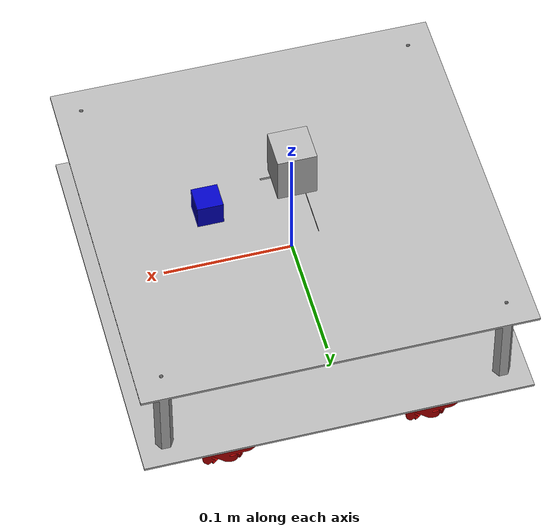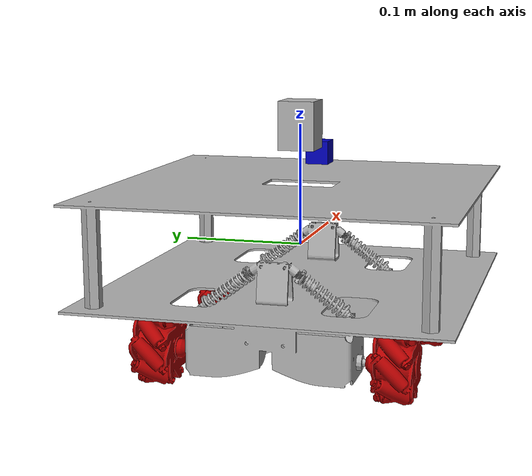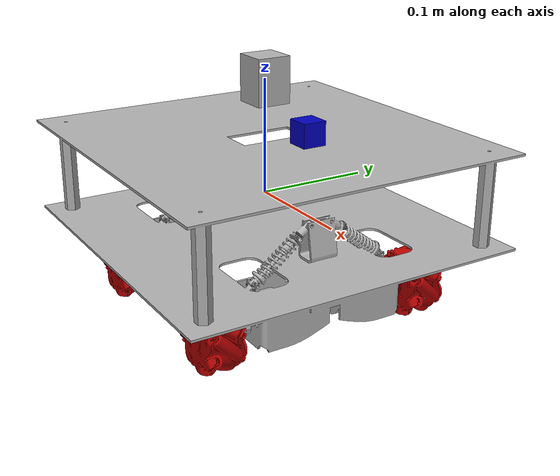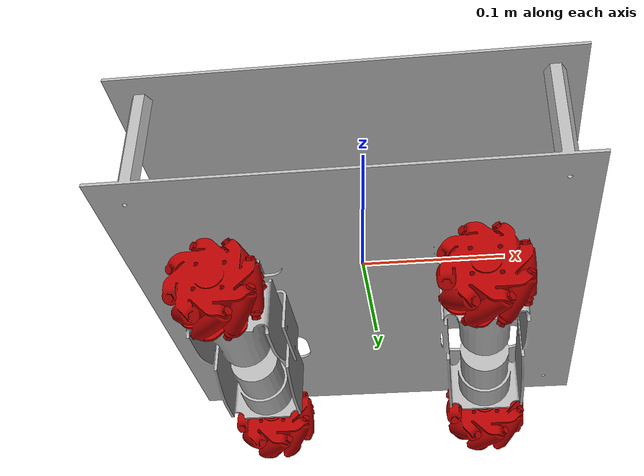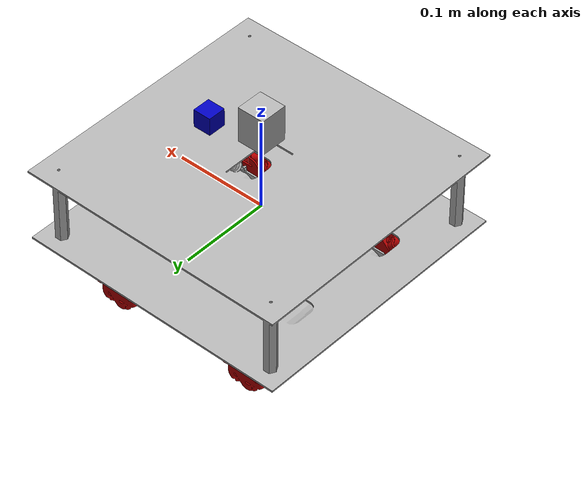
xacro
<?xml version="1.0" ?>
<robot name="test_urdf" xmlns:xacro="http://www.ros.org/wiki/xacro">

<xacro:include filename="$(find test_urdf_description)/urdf/materials.xacro" />
<xacro:include filename="$(find test_urdf_description)/urdf/test_urdf.trans" />
<xacro:include filename="$(find test_urdf_description)/urdf/test_urdf.gazebo" />

<xacro:property name="camera_size" value="0.02"/>
<xacro:property name="camera_origin_x" value="0.065"/>
<xacro:property name="camera_origin_y" value="0"/>
<xacro:property name="camera_origin_z" value="0.07"/>

<xacro:property name="laser_size_x" value="0.03"/>
<xacro:property name="laser_size_y" value="0.03"/>
<xacro:property name="laser_size_z" value="0.04"/>
<xacro:property name="laser_origin_x" value="0.000"/>
<xacro:property name="laser_origin_y" value="0"/>
<xacro:property name="laser_origin_z" value="0.1"/>

<link name="base_footprint">
</link>

<link name="base_link">
  <inertial>
    <origin xyz="0.002324266194787791 8.74787643784769e-08 -0.021221672503303222" rpy="0 0 0"/>
    <mass value="5.27012256089369"/>
    <inertia ixx="0.041911" iyy="0.052658" izz="0.070317" ixy="0.0" iyz="0.0" ixz="-0.0"/>
  </inertial>
  <visual>
    <origin xyz="0 0 0" rpy="0 0 0"/>
    <geometry>
      <mesh filename="package://test_urdf_description/meshes/base_link.stl" scale="0.001 0.001 0.001"/>
    </geometry>
    <material name="silver"/>
  </visual>
  <collision>
    <origin xyz="0 0 0" rpy="0 0 0"/>
    <geometry>
      <mesh filename="package://test_urdf_description/meshes/base_link.stl" scale="0.001 0.001 0.001"/>
    </geometry>
  </collision>
</link>

<link name="backward_left_wheel_v1_1">
  <inertial>
    <origin xyz="-1.1557248450533297e-05 0.011279563276149276 -2.765017378882073e-05" rpy="0 0 0"/>
    <mass value="0.40458091077455555"/>
    <inertia ixx="0.000102" iyy="0.00014" izz="0.000102" ixy="-0.0" iyz="-0.0" ixz="-0.0"/>
  </inertial>
  <visual>
    <origin xyz="0.077767 -0.0855 0.074294" rpy="0 0 0"/>
    <geometry>
      <mesh filename="package://test_urdf_description/meshes/backward_left_wheel_v1_1.stl" scale="0.001 0.001 0.001"/>
    </geometry>
    <material name="green"/>
  </visual>
  <collision>
    <origin xyz="0.077767 -0.0855 0.074294" rpy="0 0 0"/>
    <geometry>
      <mesh filename="package://test_urdf_description/meshes/backward_left_wheel_v1_1.stl" scale="0.001 0.001 0.001"/>
    </geometry>
  </collision>
</link>

<link name="backward_right_wheel_v1_1">
  <inertial>
    <origin xyz="1.135019835438178e-05 -0.011279383659375988 -2.765017378618395e-05" rpy="0 0 0"/>
    <mass value="0.40458091077455555"/>
    <inertia ixx="0.000102" iyy="0.00014" izz="0.000102" ixy="-0.0" iyz="0.0" ixz="0.0"/>
  </inertial>
  <visual>
    <origin xyz="0.077767 0.0855 0.074294" rpy="0 0 0"/>
    <geometry>
      <mesh filename="package://test_urdf_description/meshes/backward_right_wheel_v1_1.stl" scale="0.001 0.001 0.001"/>
    </geometry>
    <material name="green"/>
  </visual>
  <collision>
    <origin xyz="0.077767 0.0855 0.074294" rpy="0 0 0"/>
    <geometry>
      <mesh filename="package://test_urdf_description/meshes/backward_right_wheel_v1_1.stl" scale="0.001 0.001 0.001"/>
    </geometry>
  </collision>
</link>

<link name="forward_left_wheel_v1_1">
  <inertial>
    <origin xyz="-1.155724844129069e-05 0.011279563276145904 -2.765017378712764e-05" rpy="0 0 0"/>
    <mass value="0.40458091077455555"/>
    <inertia ixx="0.000102" iyy="0.00014" izz="0.000102" ixy="-0.0" iyz="-0.0" ixz="-0.0"/>
  </inertial>
  <visual>
    <origin xyz="-0.082233 -0.0855 0.074294" rpy="0 0 0"/>
    <geometry>
      <mesh filename="package://test_urdf_description/meshes/forward_left_wheel_v1_1.stl" scale="0.001 0.001 0.001"/>
    </geometry>
    <material name="green"/>
  </visual>
  <collision>
    <origin xyz="-0.082233 -0.0855 0.074294" rpy="0 0 0"/>
    <geometry>
      <mesh filename="package://test_urdf_description/meshes/forward_left_wheel_v1_1.stl" scale="0.001 0.001 0.001"/>
    </geometry>
  </collision>
</link>

<link name="forward_right_wheel_v1_1">
  <inertial>
    <origin xyz="1.1350198356616104e-05 -0.01127938365937553 -2.7650173787835408e-05" rpy="0 0 0"/>
    <mass value="0.40458091077455555"/>
    <inertia ixx="0.000102" iyy="0.00014" izz="0.000102" ixy="-0.0" iyz="0.0" ixz="0.0"/>
  </inertial>
  <visual>
    <origin xyz="-0.082233 0.0855 0.074294" rpy="0 0 0"/>
    <geometry>
      <mesh filename="package://test_urdf_description/meshes/forward_right_wheel_v1_1.stl" scale="0.001 0.001 0.001"/>
    </geometry>
    <material name="green"/>
  </visual>
  <collision>
    <origin xyz="-0.082233 0.0855 0.074294" rpy="0 0 0"/>
    <geometry>
      <mesh filename="package://test_urdf_description/meshes/forward_right_wheel_v1_1.stl" scale="0.001 0.001 0.001"/>
    </geometry>
  </collision>
</link>

 <!--Camera-->
 <link name="camera">
  <visual>
    <geometry>
      <box size="${camera_size} ${camera_size} ${camera_size}"/>
    </geometry>
    <material name="blue"/>
  </visual>
  <collision>
    <geometry>
      <box size="${camera_size} ${camera_size} ${camera_size}"/>
    </geometry>
  </collision>
  <mass value="0.2"/>
</link>

<!--Laser Scan-->
<link name="sensor_laser">
  <visual>
    <geometry>

      <box size="${laser_size_x} ${laser_size_y} ${laser_size_z}"/>
    </geometry>
    <material name="silver"/>
  </visual>
  <collision>
    <geometry>
      <box size="${laser_size_x} ${laser_size_y} ${laser_size_z}"/>
    </geometry>
  </collision>
  <mass value="0.02"/>
</link>

<joint name="base_footprint_joint" type="fixed">
  <parent link="base_footprint"/>
  <child link="base_link"/>
</joint>

<joint name="Revolute_1" type="continuous">
  <origin xyz="-0.077767 0.0855 -0.074294" rpy="0 0 0"/>
  <parent link="base_link"/>
  <child link="backward_left_wheel_v1_1"/>
  <axis xyz="-0.0 1.0 0.0"/>
</joint>

<joint name="Revolute_2" type="continuous">
  <origin xyz="-0.077767 -0.0855 -0.074294" rpy="0 0 0"/>
  <parent link="base_link"/>
  <child link="backward_right_wheel_v1_1"/>
  <axis xyz="0.0 -1.0 0.0"/>
</joint>

<joint name="Revolute_3" type="continuous">
  <origin xyz="0.082233 0.0855 -0.074294" rpy="0 0 0"/>
  <parent link="base_link"/>
  <child link="forward_left_wheel_v1_1"/>
  <axis xyz="0.0 1.0 0.0"/>
</joint>

<joint name="Revolute_4" type="continuous">
  <origin xyz="0.082233 -0.0855 -0.074294" rpy="0 0 0"/>
  <parent link="base_link"/>
  <child link="forward_right_wheel_v1_1"/>
  <axis xyz="-0.0 -1.0 0.0"/>
</joint>

<joint name="camera_joint" type="fixed">
  <origin xyz="${camera_origin_x} ${camera_origin_y} ${camera_origin_z}" rpy="0 0 0"/>
  <parent link="base_link"/>
  <child link="camera"/>
</joint>

  <joint name="sensor_laser_joint" type="fixed">
    <origin xyz="${laser_origin_x} ${laser_origin_y} ${laser_origin_z}" rpy="0 0 0" />
    <parent link="base_link"/>
    <child link="sensor_laser" />
  </joint>

</robot>

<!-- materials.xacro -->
<robot name="test_urdf" xmlns:xacro="http://www.ros.org/wiki/xacro" >

<material name="silver">
  <color rgba="0.700 0.700 0.700 1.000"/>
</material>

<material name="blue">
  <color rgba="0.000 0.000 0.750 1.000"/>
</material>

<material name="green">
  <color rgba="0.700 0.000 0.000 1.000"/>
</material>

<material name="red">
  <color rgba="1.000 0.000 0.000 1.000"/>
</material>

</robot>

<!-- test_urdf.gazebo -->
<robot name="test_urdf" xmlns:xacro="http://www.ros.org/wiki/xacro" >

<xacro:property name="body_color" value="Gazebo/Silver" />

<gazebo>
  <plugin name="control" filename="libgazebo_ros_control.so"/>
</gazebo>

<gazebo>
  <plugin name="omni_steering" filename="libgazebo_ros_planar_move.so">
    <commandTopic>cmd_vel</commandTopic>
    <odometryTopic>odom</odometryTopic>
    <odometryFrame>odom</odometryFrame>
    <odometryRate>20.0</odometryRate>
    <robotBaseFrame>base_footprint</robotBaseFrame>
    <publishTF>true</publishTF>
  </plugin>
</gazebo>

<gazebo>
  <plugin name="imu_plugin" filename="libgazebo_ros_imu.so">
    <alwaysOn>true</alwaysOn>
    <bodyName>base_footprint</bodyName>
    <topicName>imu</topicName>
    <serviceName>imu_service</serviceName>
    <gaussianNoise>0.0</gaussianNoise>
    <updateRate>20.0</updateRate>
  </plugin>
</gazebo>

<gazebo reference="camera">
  <sensor type="camera" name="camera">
    <update_rate>30.0</update_rate>
    <camera name="head">
      <horizontal_fov>1.3962634</horizontal_fov>
      <image>
        <width>800</width>
        <height>800</height>
        <format>R8G8B8</format>
      </image>
      <clip>
        <near>0.02</near>
        <far>300</far>
      </clip>
      <noise>
        <type>gaussian</type>
        <!-- Noise is sampled independently per pixel on each frame.
             That pixel's noise value is added to each of its color
             channels, which at that point lie in the range [0,1]. -->
        <mean>0.0</mean>
        <stddev>0.007</stddev>
      </noise>
    </camera>
    <plugin name="camera_controller" filename="libgazebo_ros_camera.so">
      <alwaysOn>true</alwaysOn>
      <updateRate>0.0</updateRate>
      <cameraName>/mybot/camera</cameraName>
      <imageTopicName>image_raw</imageTopicName>
      <cameraInfoTopicName>camera_info</cameraInfoTopicName>
      <frameName>camera</frameName>
      <hackBaseline>0.07</hackBaseline>
      <distortionK1>0.0</distortionK1>
      <distortionK2>0.0</distortionK2>
      <distortionK3>0.0</distortionK3>
      <distortionT1>0.0</distortionT1>
      <distortionT2>0.0</distortionT2>
    </plugin>
  </sensor>
</gazebo>

<gazebo reference="sensor_laser">
  <sensor type="ray" name="head_hokuyo_sensor">
    <pose>0 0 0 0 0 0</pose>
    <visualize>true</visualize>
    <update_rate>40</update_rate>
    <ray>
      <scan>
        <horizontal>
          <samples>720</samples>
          <resolution>1</resolution>
          <min_angle>0</min_angle>
          <max_angle>6.2832</max_angle>
        </horizontal>
      </scan>
      <range>
        <min>0.10</min>
        <max>100.0</max>
        <resolution>0.01</resolution>
      </range>
      <noise>
        <type>gaussian</type>
        <mean>0.0</mean>
        <stddev>0.01</stddev>
      </noise>
    </ray>
    <plugin name="gazebo_ros_head_hokuyo_controller" filename="libgazebo_ros_laser.so">
      <frameName>sensor_laser</frameName>
    </plugin>
  </sensor>
</gazebo>

<gazebo reference="base_link">
  <material>${body_color}</material>
  <mu1>0.2</mu1>
  <mu2>0.2</mu2>
  <selfCollide>true</selfCollide>
  <gravity>true</gravity>
</gazebo>

<gazebo reference="backward_left_wheel_v1_1">
  <material>${body_color}</material>
  <mu1>0.2</mu1>
  <mu2>0.2</mu2>
  <selfCollide>true</selfCollide>
</gazebo>

<gazebo reference="backward_right_wheel_v1_1">
  <material>${body_color}</material>
  <mu1>0.2</mu1>
  <mu2>0.2</mu2>
  <selfCollide>true</selfCollide>
</gazebo>

<gazebo reference="forward_left_wheel_v1_1">
  <material>${body_color}</material>
  <mu1>0.2</mu1>
  <mu2>0.2</mu2>
  <selfCollide>true</selfCollide>
</gazebo>

<gazebo reference="forward_right_wheel_v1_1">
  <material>${body_color}</material>
  <mu1>0.2</mu1>
  <mu2>0.2</mu2>
  <selfCollide>true</selfCollide>
</gazebo>

</robot>
